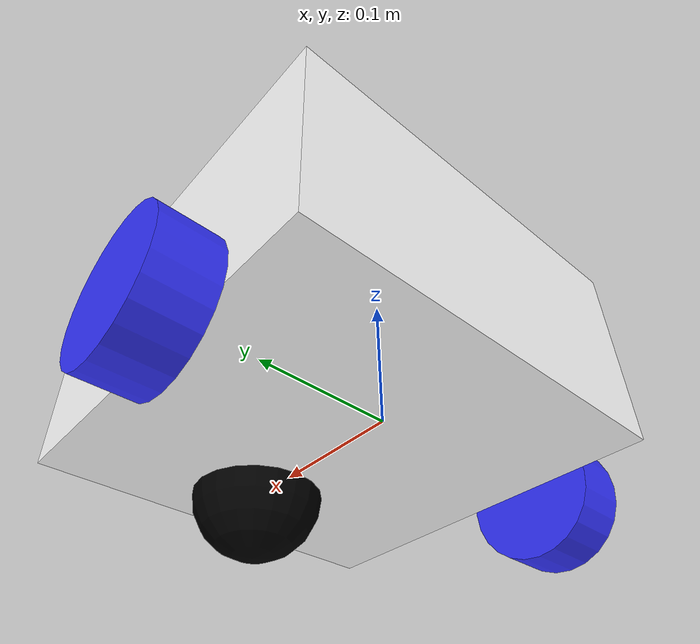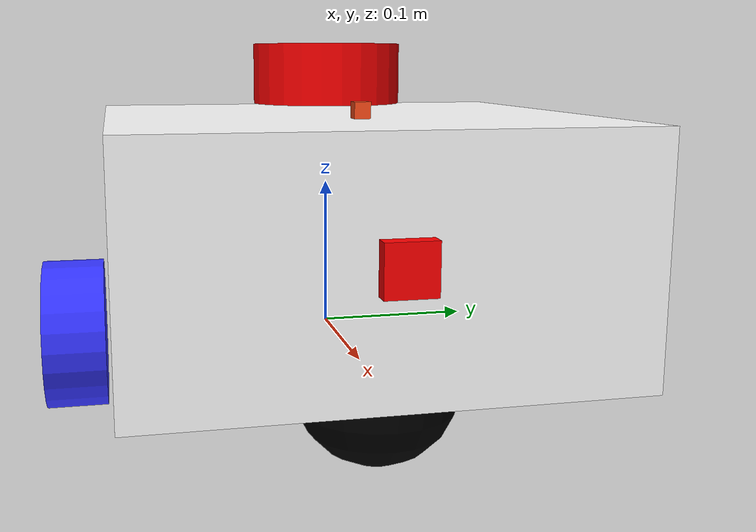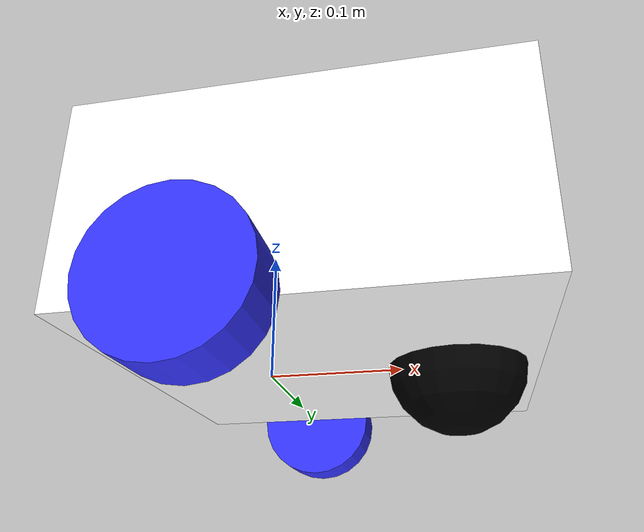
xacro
<?xml version="1.0"?>
<robot xmlns:xacro="http://www.ros.org/wiki/xacro"  name="mrbot">

    <xacro:arg name="robot_name" default=""/>

    <!-- include robot core file -->
    <xacro:include filename="robot_core.xacro" />
    <xacro:include filename="imu.xacro" />
    <xacro:include filename="lidar.xacro" />
    <xacro:include filename="camera.xacro" />
    <xacro:include filename="gazebo_control.xacro" />

</robot>

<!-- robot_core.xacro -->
<robot xmlns:xacro="http://www.ros.org/wiki/xacro" name="nsbot" >

    <xacro:include filename="inertial_macros.xacro"/>

    <material name="white">
        <color rgba="1 1 1 1" />
    </material>

    <material name="orange">
        <color rgba="1 0.3 0.1 1"/>
    </material>

    <material name="blue">
        <color rgba="0.2 0.2 1 1"/>
    </material>

    <material name="black">
        <color rgba="0 0 0 1"/>
    </material>

    <!-- BASE LINK -->

    <link name="base_link">

    </link>

    <!-- CHASSIS LINK -->

    <joint name="chassis_joint" type="fixed">
        <parent link="base_link"/>
        <child link="chassis"/>
        <origin xyz="-0.1 0 0"/>
    </joint>

    <link name="chassis">
        <visual>
            <origin xyz="0.15 0 0.075"/>
            <geometry>
                <box size="0.3 0.3 0.15"/>
            </geometry>
            <material name="white"/>
        </visual>
        <collision>
            <origin xyz="0.15 0 0.075"/>
            <geometry>
                <box size="0.3 0.3 0.15"/>
            </geometry>
        </collision>
        <xacro:inertial_box mass="0.5" x="0.3" y="0.3" z="0.15">
            <origin xyz="0.15 0 -0.075" rpy="0 0 0"/>
        </xacro:inertial_box>
    </link>
    <gazebo reference="chassis">
        <material>Gazebo/White</material>
    </gazebo>

    <!-- LEFT WHEEL LINK -->

    <joint name="left_wheel_joint" type="continuous">
        <parent link="base_link"/>
        <child link="left_wheel"/>
        <origin xyz="0 0.175 0" rpy="-${pi/2} 0 0" />
        <axis xyz="0 0 1"/>
    </joint>

    <link name="left_wheel">
        <visual>
            <geometry>
                <cylinder radius="0.05" length="0.04"/>
            </geometry>
            <material name="blue"/>
        </visual>
        <collision>
            <geometry>
                <cylinder radius="0.05" length="0.04"/>
            </geometry>
        </collision>
        <xacro:inertial_cylinder mass="0.1" length="0.04" radius="0.05">
            <origin xyz="0 0 0" rpy="0 0 0"/>
        </xacro:inertial_cylinder>
    </link>
    <gazebo reference="left_wheel">
        <material>Gazebo/Blue</material>
    </gazebo>

    <!-- RIGHT WHEEL LINK -->

    <joint name="right_wheel_joint" type="continuous">
        <parent link="base_link"/>
        <child link="right_wheel"/>
        <origin xyz="0 -0.175 0" rpy="${pi/2} 0 0" />
        <axis xyz="0 0 -1"/>
    </joint>

    <link name="right_wheel">
        <visual>
            <geometry>
                <cylinder radius="0.05" length="0.04"/>
            </geometry>
            <material name="blue"/>
        </visual>
        <collision>
            <geometry>
                <cylinder radius="0.05" length="0.04"/>
            </geometry>
        </collision>
        <xacro:inertial_cylinder mass="0.1" length="0.04" radius="0.05">
            <origin xyz="0 0 0" rpy="0 0 0"/>
        </xacro:inertial_cylinder>
    </link>
    <gazebo reference="right_wheel">
        <material>Gazebo/Blue</material>
    </gazebo>

    <!-- CASTER WHEEL LINK -->

    <joint name="caster_wheel_joint" type="fixed">
        <parent link="chassis"/>
        <child link="caster_wheel"/>
        <origin xyz="0.24 0 0"/>
    </joint>

    <link name="caster_wheel">
        <visual>
            <geometry>
                <sphere radius="0.05"/>
            </geometry>
            <material name="black"/>
        </visual>
        <collision>
            <geometry>
                <sphere radius="0.05"/>
            </geometry>
        </collision>
        <xacro:inertial_sphere mass="0.1" radius="0.05">
            <origin xyz="0 0 0" rpy="0 0 0"/>
        </xacro:inertial_sphere>
    </link>
    <gazebo reference="caster_wheel">
        <material>Gazebo/Black</material>
        <mu1 value="0.001"/>
        <mu2 value="0.001"/>
    </gazebo>

</robot>

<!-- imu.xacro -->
<robot xmlns:xacro="http://www.ros.org/wiki/xacro">

    <joint name="imu_joint" type="fixed">
        <parent link="chassis"/>
        <child link="imu_frame"/>
        <origin xyz="0.2 0 0.155" rpy="0 0 0"/>
    </joint>

    <link name="imu_frame">
        <visual>
            <geometry>
                <box size="0.01 0.01 0.01"/>
            </geometry>
            <material name="orange"/>
        </visual>
        <collision>
            <geometry>
                <box size="0.01 0.01 0.01"/>
            </geometry>
        </collision>
    </link>

    <gazebo reference="imu_frame">
        <material>Gazebo/Orange</material>
        <sensor name="imu" type="imu">
            <always_on>true</always_on>
            <update_rate>200</update_rate>
            <visualize>true</visualize>
            <pose>0 0 0 0 0 0</pose>

            <plugin name="imu" filename="libgazebo_ros_imu_sensor.so">
                 <ros>
                     <namespace>$(arg robot_name)</namespace>
                     <argument>~/out:=imu</argument>
                 </ros>
                 <frame_name>$(arg robot_name)/imu_frame</frame_name>
            </plugin>
        </sensor>
    </gazebo>

</robot>

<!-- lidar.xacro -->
<robot xmlns:xacro="http://www.ros.org/wiki/xacro" >

    <joint name="laser_joint" type="fixed">
        <parent link="chassis"/>
        <child link="laser_link"/>
        <origin xyz="0.1 0 0.175" rpy="0 0 0"/>
    </joint>

    <link name="laser_link">
        <visual>
            <geometry>
                <cylinder radius="0.05" length="0.04"/>
            </geometry>
            <material name="red"/>
        </visual>
        <collision>
            <geometry>
                <cylinder radius="0.05" length="0.04"/>
            </geometry>
        </collision>
        <xacro:inertial_cylinder mass="0.1" length="0.04" radius="0.05">
            <origin xyz="0 0 0" rpy="0 0 0"/>
        </xacro:inertial_cylinder>
    </link>

    <material name="red">
        <color rgba="1 0 0 1"/>
    </material>
    <gazebo reference="laser_link">
        <material>Gazebo/Red</material>
        <sensor name="laser" type="ray">
            <pose> 0 0 0 0 0 0 </pose>
            <visualize>true</visualize>
            <update_rate>5</update_rate>
            <ray>
                <scan>
                    <horizontal>
                        <samples>120</samples>
                        <min_angle>-3.14</min_angle>
                        <max_angle>3.14</max_angle>
                    </horizontal>
                </scan>
                <range>
                    <min>0.3</min>
                    <max>12.0</max>
                </range>
            </ray>
            <plugin name="laser_controller" filename="libgazebo_ros_ray_sensor.so">
                <ros>
                    <namespace>$(arg robot_name)</namespace>
                    <argument>~/out:=scan</argument>
                </ros>
                <output_type>sensor_msgs/LaserScan</output_type>
                <frame_name>$(arg robot_name)/laser_link</frame_name>
            </plugin>

        </sensor>
    </gazebo>

</robot>

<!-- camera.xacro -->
<robot xmlns:xacro="http://www.ros.org/wiki/xacro" >

    <joint name="camera_joint" type="fixed">
        <parent link="chassis"/>
        <child link="camera_link"/>
        <origin xyz="0.305 0 0.08" rpy="0 0 0"/>
    </joint>

    <link name="camera_link">
        <visual>
            <geometry>
                <box size="0.010 0.03 0.03"/>
            </geometry>
            <material name="red"/>
        </visual>
    </link>

    <gazebo reference="camera_link">
        <material>Gazebo/Red</material>
    </gazebo>

    <joint name="camera_optical_joint" type="fixed">
        <origin xyz="0 0 0" rpy="${-pi/2} 0 ${-pi/2}" />
        <parent link="camera_link" />
        <child link="camera_link_optical" />
    </joint>

    <link name="camera_link_optical"></link>

    <gazebo reference="camera_link">
        <material>Gazebo/Red</material>

        <sensor name="camera" type="camera">
            <pose> 0 0 0 0 0 0 </pose>
            <visualize>true</visualize>
            <update_rate>10</update_rate>
            <camera>
                <horizontal_fov>1.089</horizontal_fov>
                <image>
                    <format>R8G8B8</format>
                    <width>640</width>
                    <height>480</height>
                </image>
                <clip>
                    <near>0.05</near>
                    <far>8.0</far>
                </clip>
            </camera>
            <plugin name="camera_controller" filename="libgazebo_ros_camera.so">
                <frame_name>camera_link_optical</frame_name>
            </plugin>
        </sensor>
    </gazebo>

</robot>
